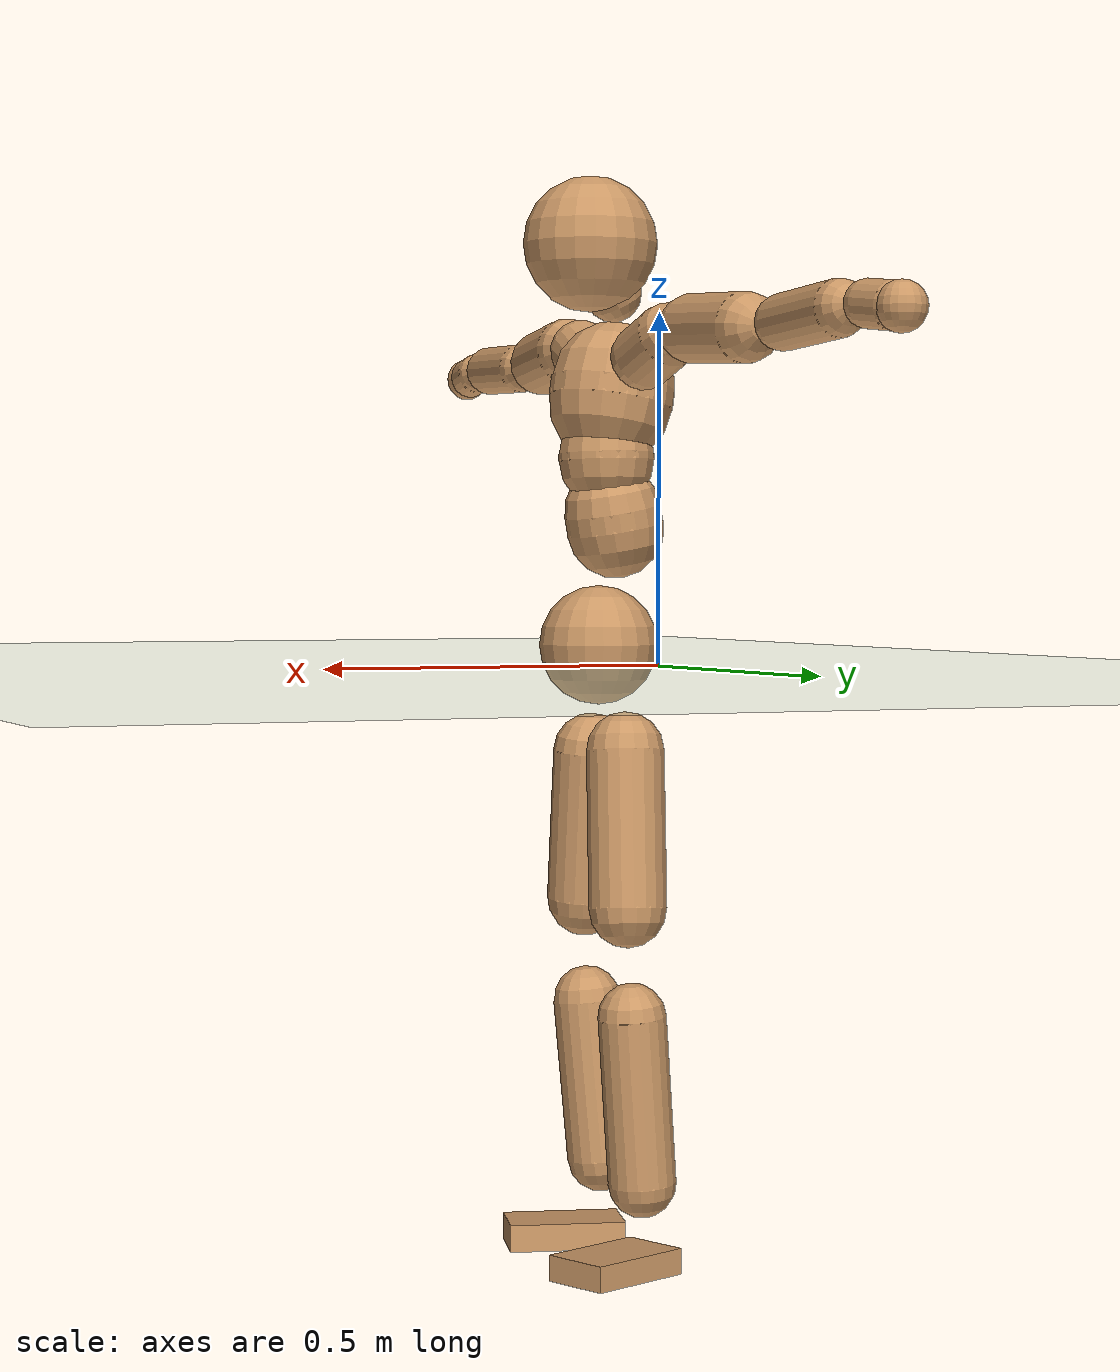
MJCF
<mujoco model="humanoid">
  <compiler coordinate="local"/>
  <default>
    <joint damping="0.0" armature="0.01" stiffness="0.0" limited="true"/>
    <geom conaffinity="1" condim="3" contype="7" margin="0.001" rgba="0.8 0.6 .4 1"/>
  </default>
  <asset>
    <texture type="skybox" builtin="gradient" rgb1=".4 .5 .6" rgb2="0 0 0" width="100" height="100"/>
    <texture builtin="flat" height="1278" mark="cross" markrgb="1 1 1" name="texgeom" random="0.01" rgb1="0.8 0.6 0.4" rgb2="0.8 0.6 0.4" type="cube" width="127"/>
    <texture builtin="checker" height="100" name="texplane" rgb1="0 0 0" rgb2="0.8 0.8 0.8" type="2d" width="100"/>
    <material name="MatPlane" reflectance="0.5" shininess="1" specular="1" texrepeat="60 60" texture="texplane"/>
    <material name="geom" texture="texgeom" texuniform="true"/>
  </asset>
  <worldbody>
    <light cutoff="100" diffuse="1 1 1" dir="-0 0 -1.3" directional="true" exponent="1" pos="0 0 1.3" specular=".1 .1 .1"/>
    <geom conaffinity="1" condim="3" name="floor" pos="0 0 0" rgba="0.8 0.9 0.8 1" size="100 100 .2" type="plane" material="MatPlane"/>
    <body name="Pelvis" pos="-0.0033 -0.2277 0.024">
      <freejoint name="Pelvis"/>
      <geom type="sphere" contype="1" conaffinity="1" density="500" size="0.0889" pos="0.0000 0.0000 0.0000" name="Pelvis"/>
      <body name="L_Hip" pos="-0.0186 0.0537 -0.0785">
        <joint name="L_Hip_x" type="hinge" pos="0 0 0" axis="1 0 0" stiffness="800" damping="80" armature="0.02" range="-180.0000 180.0000"/>
        <joint name="L_Hip_y" type="hinge" pos="0 0 0" axis="0 1 0" stiffness="800" damping="80" armature="0.02" range="-180.0000 180.0000"/>
        <joint name="L_Hip_z" type="hinge" pos="0 0 0" axis="0 0 1" stiffness="800" damping="80" armature="0.02" range="-180.0000 180.0000"/>
        <geom type="capsule" contype="1" conaffinity="1" density="500" fromto="0.0026 0.0093 -0.0773 0.0104 0.0371 -0.3093" size="0.0583" name="L_Hip"/>
        <body name="L_Knee" pos="0.013 0.0464 -0.3867">
          <joint name="L_Knee_x" type="hinge" pos="0 0 0" axis="1 0 0" stiffness="800" damping="80" armature="0.02" range="-180.0000 180.0000"/>
          <joint name="L_Knee_y" type="hinge" pos="0 0 0" axis="0 1 0" stiffness="800" damping="80" armature="0.02" range="-180.0000 180.0000"/>
          <joint name="L_Knee_z" type="hinge" pos="0 0 0" axis="0 0 1" stiffness="800" damping="80" armature="0.02" range="-180.0000 180.0000"/>
          <geom type="capsule" contype="1" conaffinity="1" density="500" fromto="-0.0067 -0.0025 -0.0835 -0.0266 -0.0101 -0.3342" size="0.0511" name="L_Knee"/>
          <body name="L_Ankle" pos="-0.0333 -0.0126 -0.4177">
            <joint name="L_Ankle_x" type="hinge" pos="0 0 0" axis="1 0 0" stiffness="800" damping="80" armature="0.02" range="-180.0000 180.0000"/>
            <joint name="L_Ankle_y" type="hinge" pos="0 0 0" axis="0 1 0" stiffness="800" damping="80" armature="0.02" range="-180.0000 180.0000"/>
            <joint name="L_Ankle_z" type="hinge" pos="0 0 0" axis="0 0 1" stiffness="800" damping="80" armature="0.02" range="-180.0000 180.0000"/>
            <geom type="box" contype="1" conaffinity="1" density="500" pos="0.0583 0.0233 -0.0297" size="0.0847 0.0531 0.0194" quat="0.9820 0.0000 0.0000 0.1890" name="L_Ankle"/>
            <body name="L_Toe" pos="0.1167 0.0466 -0.0595">
              <joint name="L_Toe_x" type="hinge" pos="0 0 0" axis="1 0 0" stiffness="500" damping="50" armature="0.02" range="-180.0000 180.0000"/>
              <joint name="L_Toe_y" type="hinge" pos="0 0 0" axis="0 1 0" stiffness="500" damping="50" armature="0.02" range="-180.0000 180.0000"/>
              <joint name="L_Toe_z" type="hinge" pos="0 0 0" axis="0 0 1" stiffness="500" damping="50" armature="0.02" range="-180.0000 180.0000"/>
              <geom type="box" contype="1" conaffinity="1" density="500" pos="0.0000 0.0000 0.0304" size="0.001 0.0025 0.001" quat="0.9812 0.0000 0.0000 0.1932" name="L_Toe"/>
            </body>
          </body>
        </body>
      </body>
      <body name="R_Hip" pos="-0.0149 -0.0546 -0.0866">
        <joint name="R_Hip_x" type="hinge" pos="0 0 0" axis="1 0 0" stiffness="800" damping="80" armature="0.02" range="-180.0000 180.0000"/>
        <joint name="R_Hip_y" type="hinge" pos="0 0 0" axis="0 1 0" stiffness="800" damping="80" armature="0.02" range="-180.0000 180.0000"/>
        <joint name="R_Hip_z" type="hinge" pos="0 0 0" axis="0 0 1" stiffness="800" damping="80" armature="0.02" range="-180.0000 180.0000"/>
        <geom type="capsule" contype="1" conaffinity="1" density="500" fromto="-0.0002 -0.0090 -0.0759 -0.0007 -0.0360 -0.3036" size="0.0574" name="R_Hip"/>
        <body name="R_Knee" pos="-0.0009 -0.045 -0.3795">
          <joint name="R_Knee_x" type="hinge" pos="0 0 0" axis="1 0 0" stiffness="800" damping="80" armature="0.02" range="-180.0000 180.0000"/>
          <joint name="R_Knee_y" type="hinge" pos="0 0 0" axis="0 1 0" stiffness="800" damping="80" armature="0.02" range="-180.0000 180.0000"/>
          <joint name="R_Knee_z" type="hinge" pos="0 0 0" axis="0 0 1" stiffness="800" damping="80" armature="0.02" range="-180.0000 180.0000"/>
          <geom type="capsule" contype="1" conaffinity="1" density="500" fromto="-0.0063 0.0034 -0.0819 -0.0253 0.0137 -0.3274" size="0.0518" name="R_Knee"/>
          <body name="R_Ankle" pos="-0.0316 0.0171 -0.4093">
            <joint name="R_Ankle_x" type="hinge" pos="0 0 0" axis="1 0 0" stiffness="800" damping="80" armature="0.02" range="-180.0000 180.0000"/>
            <joint name="R_Ankle_y" type="hinge" pos="0 0 0" axis="0 1 0" stiffness="800" damping="80" armature="0.02" range="-180.0000 180.0000"/>
            <joint name="R_Ankle_z" type="hinge" pos="0 0 0" axis="0 0 1" stiffness="800" damping="80" armature="0.02" range="-180.0000 180.0000"/>
            <geom type="box" contype="1" conaffinity="1" density="500" pos="0.0629 -0.0163 -0.0299" size="0.0887 0.0484 0.0206" quat="0.9920 0.0000 0.0000 -0.1265" name="R_Ankle"/>
            <body name="R_Toe" pos="0.1258 -0.0326 -0.0599">
              <joint name="R_Toe_x" type="hinge" pos="0 0 0" axis="1 0 0" stiffness="500" damping="50" armature="0.02" range="-180.0000 180.0000"/>
              <joint name="R_Toe_y" type="hinge" pos="0 0 0" axis="0 1 0" stiffness="500" damping="50" armature="0.02" range="-180.0000 180.0000"/>
              <joint name="R_Toe_z" type="hinge" pos="0 0 0" axis="0 0 1" stiffness="500" damping="50" armature="0.02" range="-180.0000 180.0000"/>
              <geom type="box" contype="1" conaffinity="1" density="500" pos="0.0000 0.0000 0.0303" size="0.001 0.0024 0.001" quat="0.9931 0.0000 0.0000 -0.1173" name="R_Toe"/>
            </body>
          </body>
        </body>
      </body>
      <body name="Torso" pos="-0.0352 0.0043 0.1181">
        <joint name="Torso_x" type="hinge" pos="0 0 0" axis="1 0 0" stiffness="1000" damping="100" armature="0.02" range="-180.0000 180.0000"/>
        <joint name="Torso_y" type="hinge" pos="0 0 0" axis="0 1 0" stiffness="1000" damping="100" armature="0.02" range="-180.0000 180.0000"/>
        <joint name="Torso_z" type="hinge" pos="0 0 0" axis="0 0 1" stiffness="1000" damping="100" armature="0.02" range="-180.0000 180.0000"/>
        <geom type="capsule" contype="1" conaffinity="1" density="500" fromto="0.0154 0.0027 0.0807 0.0103 0.0018 0.0538" size="0.0726" name="Torso"/>
        <body name="Spine" pos="0.0257 0.0046 0.1344">
          <joint name="Spine_x" type="hinge" pos="0 0 0" axis="1 0 0" stiffness="1000" damping="100" armature="0.02" range="-180.0000 180.0000"/>
          <joint name="Spine_y" type="hinge" pos="0 0 0" axis="0 1 0" stiffness="1000" damping="100" armature="0.02" range="-180.0000 180.0000"/>
          <joint name="Spine_z" type="hinge" pos="0 0 0" axis="0 0 1" stiffness="1000" damping="100" armature="0.02" range="-180.0000 180.0000"/>
          <geom type="capsule" contype="1" conaffinity="1" density="500" fromto="0.0004 -0.0009 0.0325 0.0003 -0.0006 0.0217" size="0.0714" name="Spine"/>
          <body name="Chest" pos="0.0007 -0.0015 0.0542">
            <joint name="Chest_x" type="hinge" pos="0 0 0" axis="1 0 0" stiffness="1000" damping="100" armature="0.02" range="-180.0000 180.0000"/>
            <joint name="Chest_y" type="hinge" pos="0 0 0" axis="0 1 0" stiffness="1000" damping="100" armature="0.02" range="-180.0000 180.0000"/>
            <joint name="Chest_z" type="hinge" pos="0 0 0" axis="0 0 1" stiffness="1000" damping="100" armature="0.02" range="-180.0000 180.0000"/>
            <geom type="capsule" contype="1" conaffinity="1" density="500" fromto="-0.0136 -0.0046 0.0823 -0.0091 -0.0031 0.0549" size="0.0932" name="Chest"/>
            <body name="Neck" pos="-0.026 -0.012 0.1986">
              <joint name="Neck_x" type="hinge" pos="0 0 0" axis="1 0 0" stiffness="500" damping="50" armature="0.02" range="-180.0000 180.0000"/>
              <joint name="Neck_y" type="hinge" pos="0 0 0" axis="0 1 0" stiffness="500" damping="50" armature="0.02" range="-180.0000 180.0000"/>
              <joint name="Neck_z" type="hinge" pos="0 0 0" axis="0 0 1" stiffness="500" damping="50" armature="0.02" range="-180.0000 180.0000"/>
              <geom type="capsule" contype="1" conaffinity="1" density="500" fromto="0.0101 0.0021 0.0178 0.0404 0.0085 0.0712" size="0.0427" name="Neck"/>
              <body name="Head" pos="0.0505 0.0106 0.089">
                <joint name="Head_x" type="hinge" pos="0 0 0" axis="1 0 0" stiffness="500" damping="50" armature="0.02" range="-180.0000 180.0000"/>
                <joint name="Head_y" type="hinge" pos="0 0 0" axis="0 1 0" stiffness="500" damping="50" armature="0.02" range="-180.0000 180.0000"/>
                <joint name="Head_z" type="hinge" pos="0 0 0" axis="0 0 1" stiffness="500" damping="50" armature="0.02" range="-180.0000 180.0000"/>
                <geom type="sphere" contype="1" conaffinity="1" density="500" size="0.1002" pos="0.0000 0.0000 0.0000" name="Head"/>
              </body>
            </body>
            <body name="L_Thorax" pos="-0.0187 0.0649 0.1073">
              <joint name="L_Thorax_x" type="hinge" pos="0 0 0" axis="1 0 0" stiffness="500" damping="50" armature="0.02" range="-180.0000 180.0000"/>
              <joint name="L_Thorax_y" type="hinge" pos="0 0 0" axis="0 1 0" stiffness="500" damping="50" armature="0.02" range="-180.0000 180.0000"/>
              <joint name="L_Thorax_z" type="hinge" pos="0 0 0" axis="0 0 1" stiffness="500" damping="50" armature="0.02" range="-180.0000 180.0000"/>
              <geom type="capsule" contype="1" conaffinity="1" density="500" fromto="-0.0029 0.0225 0.0088 -0.0117 0.0899 0.0351" size="0.0485" name="L_Thorax"/>
              <body name="L_Shoulder" pos="-0.0146 0.1124 0.0438">
                <joint name="L_Shoulder_x" type="hinge" pos="0 0 0" axis="1 0 0" stiffness="500" damping="50" armature="0.02" range="-720.0000 720.0000"/>
                <joint name="L_Shoulder_y" type="hinge" pos="0 0 0" axis="0 1 0" stiffness="500" damping="50" armature="0.02" range="-720.0000 720.0000"/>
                <joint name="L_Shoulder_z" type="hinge" pos="0 0 0" axis="0 0 1" stiffness="500" damping="50" armature="0.02" range="-720.0000 720.0000"/>
                <geom type="capsule" contype="1" conaffinity="1" density="500" fromto="-0.0041 0.0493 -0.0029 -0.0163 0.1972 -0.0118" size="0.0501" name="L_Shoulder"/>
                <body name="L_Elbow" pos="-0.0203 0.2466 -0.0147">
                  <joint name="L_Elbow_x" type="hinge" pos="0 0 0" axis="1 0 0" stiffness="500" damping="50" armature="0.02" range="-720.0000 720.0000"/>
                  <joint name="L_Elbow_y" type="hinge" pos="0 0 0" axis="0 1 0" stiffness="500" damping="50" armature="0.02" range="-720.0000 720.0000"/>
                  <joint name="L_Elbow_z" type="hinge" pos="0 0 0" axis="0 0 1" stiffness="500" damping="50" armature="0.02" range="-720.0000 720.0000"/>
                  <geom type="capsule" contype="1" conaffinity="1" density="500" fromto="-0.0018 0.0515 0.0024 -0.0072 0.2061 0.0094" size="0.0391" name="L_Elbow"/>
                  <body name="L_Wrist" pos="-0.009 0.2576 0.0118">
                    <joint name="L_Wrist_x" type="hinge" pos="0 0 0" axis="1 0 0" stiffness="300" damping="30" armature="0.02" range="-180.0000 180.0000"/>
                    <joint name="L_Wrist_y" type="hinge" pos="0 0 0" axis="0 1 0" stiffness="300" damping="30" armature="0.02" range="-180.0000 180.0000"/>
                    <joint name="L_Wrist_z" type="hinge" pos="0 0 0" axis="0 0 1" stiffness="300" damping="30" armature="0.02" range="-180.0000 180.0000"/>
                    <geom type="capsule" contype="1" conaffinity="1" density="500" fromto="-0.0030 0.0167 -0.0020 -0.0121 0.0668 -0.0082" size="0.0326" name="L_Wrist"/>
                    <body name="L_Hand" pos="-0.0152 0.0836 -0.0102">
                      <joint name="L_Hand_x" type="hinge" pos="0 0 0" axis="1 0 0" stiffness="300" damping="30" armature="0.02" range="-180.0000 180.0000"/>
                      <joint name="L_Hand_y" type="hinge" pos="0 0 0" axis="0 1 0" stiffness="300" damping="30" armature="0.02" range="-180.0000 180.0000"/>
                      <joint name="L_Hand_z" type="hinge" pos="0 0 0" axis="0 0 1" stiffness="300" damping="30" armature="0.02" range="-180.0000 180.0000"/>
                      <geom type="sphere" contype="1" conaffinity="1" density="500" size="0.0342" pos="0.0000 0.0000 0.0000" name="L_Hand"/>
                    </body>
                  </body>
                </body>
              </body>
            </body>
            <body name="R_Thorax" pos="-0.0232 -0.0759 0.1055">
              <joint name="R_Thorax_x" type="hinge" pos="0 0 0" axis="1 0 0" stiffness="500" damping="50" armature="0.02" range="-180.0000 180.0000"/>
              <joint name="R_Thorax_y" type="hinge" pos="0 0 0" axis="0 1 0" stiffness="500" damping="50" armature="0.02" range="-180.0000 180.0000"/>
              <joint name="R_Thorax_z" type="hinge" pos="0 0 0" axis="0 0 1" stiffness="500" damping="50" armature="0.02" range="-180.0000 180.0000"/>
              <geom type="capsule" contype="1" conaffinity="1" density="500" fromto="-0.0012 -0.0208 0.0089 -0.0046 -0.0831 0.0355" size="0.0489" name="R_Thorax"/>
              <body name="R_Shoulder" pos="-0.0058 -0.1038 0.0444">
                <joint name="R_Shoulder_x" type="hinge" pos="0 0 0" axis="1 0 0" stiffness="500" damping="50" armature="0.02" range="-720.0000 720.0000"/>
                <joint name="R_Shoulder_y" type="hinge" pos="0 0 0" axis="0 1 0" stiffness="500" damping="50" armature="0.02" range="-720.0000 720.0000"/>
                <joint name="R_Shoulder_z" type="hinge" pos="0 0 0" axis="0 0 1" stiffness="500" damping="50" armature="0.02" range="-720.0000 720.0000"/>
                <geom type="capsule" contype="1" conaffinity="1" density="500" fromto="-0.0053 -0.0501 -0.0031 -0.0213 -0.2004 -0.0124" size="0.0508" name="R_Shoulder"/>
                <body name="R_Elbow" pos="-0.0267 -0.2504 -0.0155">
                  <joint name="R_Elbow_x" type="hinge" pos="0 0 0" axis="1 0 0" stiffness="500" damping="50" armature="0.02" range="-720.0000 720.0000"/>
                  <joint name="R_Elbow_y" type="hinge" pos="0 0 0" axis="0 1 0" stiffness="500" damping="50" armature="0.02" range="-720.0000 720.0000"/>
                  <joint name="R_Elbow_z" type="hinge" pos="0 0 0" axis="0 0 1" stiffness="500" damping="50" armature="0.02" range="-720.0000 720.0000"/>
                  <geom type="capsule" contype="1" conaffinity="1" density="500" fromto="-0.0012 -0.0525 0.0018 -0.0050 -0.2100 0.0071" size="0.0395" name="R_Elbow"/>
                  <body name="R_Wrist" pos="-0.0062 -0.2626 0.0088">
                    <joint name="R_Wrist_x" type="hinge" pos="0 0 0" axis="1 0 0" stiffness="300" damping="30" armature="0.02" range="-180.0000 180.0000"/>
                    <joint name="R_Wrist_y" type="hinge" pos="0 0 0" axis="0 1 0" stiffness="300" damping="30" armature="0.02" range="-180.0000 180.0000"/>
                    <joint name="R_Wrist_z" type="hinge" pos="0 0 0" axis="0 0 1" stiffness="300" damping="30" armature="0.02" range="-180.0000 180.0000"/>
                    <geom type="capsule" contype="1" conaffinity="1" density="500" fromto="-0.0020 -0.0171 -0.0016 -0.0080 -0.0682 -0.0066" size="0.033" name="R_Wrist"/>
                    <body name="R_Hand" pos="-0.01 -0.0853 -0.0082">
                      <joint name="R_Hand_x" type="hinge" pos="0 0 0" axis="1 0 0" stiffness="300" damping="30" armature="0.02" range="-180.0000 180.0000"/>
                      <joint name="R_Hand_y" type="hinge" pos="0 0 0" axis="0 1 0" stiffness="300" damping="30" armature="0.02" range="-180.0000 180.0000"/>
                      <joint name="R_Hand_z" type="hinge" pos="0 0 0" axis="0 0 1" stiffness="300" damping="30" armature="0.02" range="-180.0000 180.0000"/>
                      <geom type="sphere" contype="1" conaffinity="1" density="500" size="0.0346" pos="0.0000 0.0000 0.0000" name="R_Hand"/>
                    </body>
                  </body>
                </body>
              </body>
            </body>
          </body>
        </body>
      </body>
    </body>
  </worldbody>
  <actuator>
    <motor name="L_Hip_x" joint="L_Hip_x" gear="500"/>
    <motor name="L_Hip_y" joint="L_Hip_y" gear="500"/>
    <motor name="L_Hip_z" joint="L_Hip_z" gear="500"/>
    <motor name="L_Knee_x" joint="L_Knee_x" gear="500"/>
    <motor name="L_Knee_y" joint="L_Knee_y" gear="500"/>
    <motor name="L_Knee_z" joint="L_Knee_z" gear="500"/>
    <motor name="L_Ankle_x" joint="L_Ankle_x" gear="500"/>
    <motor name="L_Ankle_y" joint="L_Ankle_y" gear="500"/>
    <motor name="L_Ankle_z" joint="L_Ankle_z" gear="500"/>
    <motor name="L_Toe_x" joint="L_Toe_x" gear="500"/>
    <motor name="L_Toe_y" joint="L_Toe_y" gear="500"/>
    <motor name="L_Toe_z" joint="L_Toe_z" gear="500"/>
    <motor name="R_Hip_x" joint="R_Hip_x" gear="500"/>
    <motor name="R_Hip_y" joint="R_Hip_y" gear="500"/>
    <motor name="R_Hip_z" joint="R_Hip_z" gear="500"/>
    <motor name="R_Knee_x" joint="R_Knee_x" gear="500"/>
    <motor name="R_Knee_y" joint="R_Knee_y" gear="500"/>
    <motor name="R_Knee_z" joint="R_Knee_z" gear="500"/>
    <motor name="R_Ankle_x" joint="R_Ankle_x" gear="500"/>
    <motor name="R_Ankle_y" joint="R_Ankle_y" gear="500"/>
    <motor name="R_Ankle_z" joint="R_Ankle_z" gear="500"/>
    <motor name="R_Toe_x" joint="R_Toe_x" gear="500"/>
    <motor name="R_Toe_y" joint="R_Toe_y" gear="500"/>
    <motor name="R_Toe_z" joint="R_Toe_z" gear="500"/>
    <motor name="Torso_x" joint="Torso_x" gear="500"/>
    <motor name="Torso_y" joint="Torso_y" gear="500"/>
    <motor name="Torso_z" joint="Torso_z" gear="500"/>
    <motor name="Spine_x" joint="Spine_x" gear="500"/>
    <motor name="Spine_y" joint="Spine_y" gear="500"/>
    <motor name="Spine_z" joint="Spine_z" gear="500"/>
    <motor name="Chest_x" joint="Chest_x" gear="500"/>
    <motor name="Chest_y" joint="Chest_y" gear="500"/>
    <motor name="Chest_z" joint="Chest_z" gear="500"/>
    <motor name="Neck_x" joint="Neck_x" gear="500"/>
    <motor name="Neck_y" joint="Neck_y" gear="500"/>
    <motor name="Neck_z" joint="Neck_z" gear="500"/>
    <motor name="Head_x" joint="Head_x" gear="500"/>
    <motor name="Head_y" joint="Head_y" gear="500"/>
    <motor name="Head_z" joint="Head_z" gear="500"/>
    <motor name="L_Thorax_x" joint="L_Thorax_x" gear="500"/>
    <motor name="L_Thorax_y" joint="L_Thorax_y" gear="500"/>
    <motor name="L_Thorax_z" joint="L_Thorax_z" gear="500"/>
    <motor name="L_Shoulder_x" joint="L_Shoulder_x" gear="500"/>
    <motor name="L_Shoulder_y" joint="L_Shoulder_y" gear="500"/>
    <motor name="L_Shoulder_z" joint="L_Shoulder_z" gear="500"/>
    <motor name="L_Elbow_x" joint="L_Elbow_x" gear="500"/>
    <motor name="L_Elbow_y" joint="L_Elbow_y" gear="500"/>
    <motor name="L_Elbow_z" joint="L_Elbow_z" gear="500"/>
    <motor name="L_Wrist_x" joint="L_Wrist_x" gear="500"/>
    <motor name="L_Wrist_y" joint="L_Wrist_y" gear="500"/>
    <motor name="L_Wrist_z" joint="L_Wrist_z" gear="500"/>
    <motor name="L_Hand_x" joint="L_Hand_x" gear="500"/>
    <motor name="L_Hand_y" joint="L_Hand_y" gear="500"/>
    <motor name="L_Hand_z" joint="L_Hand_z" gear="500"/>
    <motor name="R_Thorax_x" joint="R_Thorax_x" gear="500"/>
    <motor name="R_Thorax_y" joint="R_Thorax_y" gear="500"/>
    <motor name="R_Thorax_z" joint="R_Thorax_z" gear="500"/>
    <motor name="R_Shoulder_x" joint="R_Shoulder_x" gear="500"/>
    <motor name="R_Shoulder_y" joint="R_Shoulder_y" gear="500"/>
    <motor name="R_Shoulder_z" joint="R_Shoulder_z" gear="500"/>
    <motor name="R_Elbow_x" joint="R_Elbow_x" gear="500"/>
    <motor name="R_Elbow_y" joint="R_Elbow_y" gear="500"/>
    <motor name="R_Elbow_z" joint="R_Elbow_z" gear="500"/>
    <motor name="R_Wrist_x" joint="R_Wrist_x" gear="500"/>
    <motor name="R_Wrist_y" joint="R_Wrist_y" gear="500"/>
    <motor name="R_Wrist_z" joint="R_Wrist_z" gear="500"/>
    <motor name="R_Hand_x" joint="R_Hand_x" gear="500"/>
    <motor name="R_Hand_y" joint="R_Hand_y" gear="500"/>
    <motor name="R_Hand_z" joint="R_Hand_z" gear="500"/>
  </actuator>
  <contact>
    <exclude body1="Torso" body2="Chest"/>
    <exclude body1="Head" body2="Chest"/>
    <exclude body1="R_Knee" body2="R_Toe"/>
    <exclude body1="R_Knee" body2="L_Ankle"/>
    <exclude body1="R_Knee" body2="L_Toe"/>
    <exclude body1="L_Knee" body2="L_Toe"/>
    <exclude body1="L_Knee" body2="R_Ankle"/>
    <exclude body1="L_Knee" body2="R_Toe"/>
    <exclude body1="L_Shoulder" body2="Chest"/>
    <exclude body1="R_Shoulder" body2="Chest"/>
  </contact>
  <sensor/>
  <size njmax="700" nconmax="700"/>
</mujoco>
